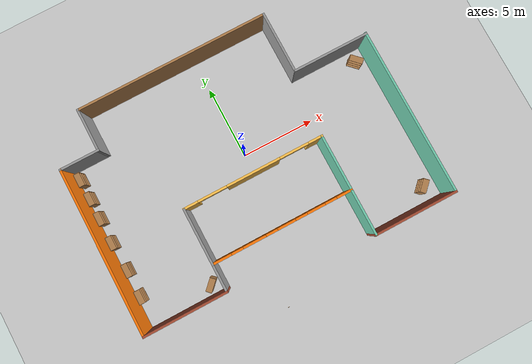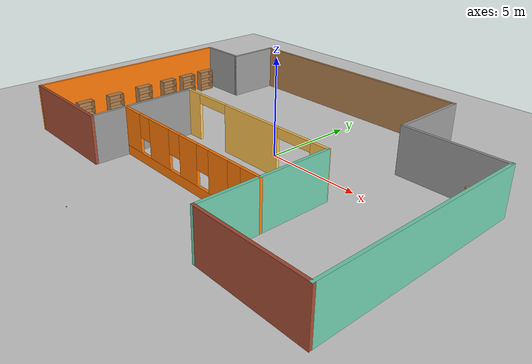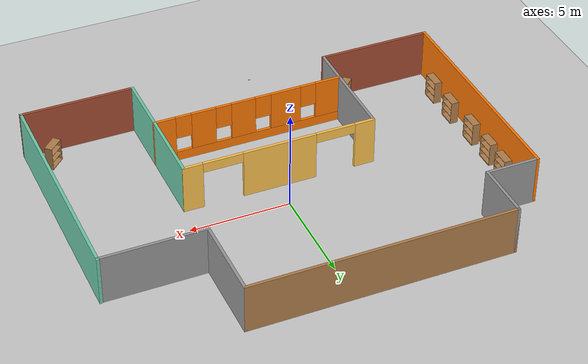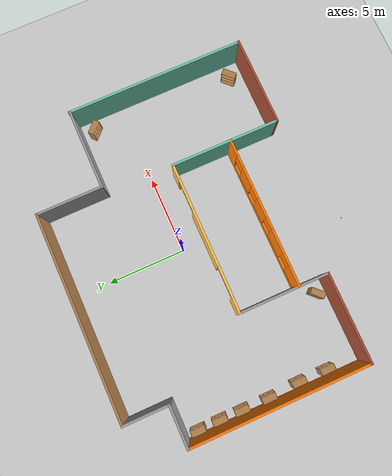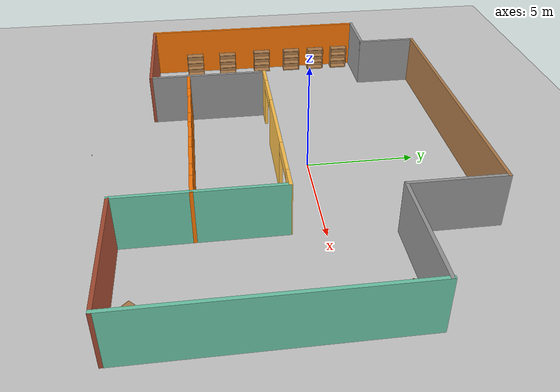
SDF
<sdf version="1.6">
 <world name="default">
  <light name="sun" type="directional">
   <pose>0 0 10 0 -0 0</pose>
   <diffuse>0.8 0.8 0.8 1</diffuse>
   <specular>0.2 0.2 0.2 1</specular>
   <attenuation>
    <range>1000</range>
    <constant>0.9</constant>
    <linear>0.01</linear>
    <quadratic>0.001</quadratic>
   </attenuation>
   <direction>-0.5 0.1 -0.9</direction>
  </light>
  <model name="ground_plane">
   <static>1</static>
   <link name="link">
    <collision name="collision">
     <geometry><plane><normal>0 0 1</normal><size>100 100</size></plane></geometry>
     <surface>
      <contact><collide_bitmask>65535</collide_bitmask></contact>
      <friction><ode><mu>100</mu><mu2>50</mu2></ode></friction>
     </surface>
    </collision>
    <visual name="visual">
     <cast_shadows>0</cast_shadows>
     <geometry><plane><normal>0 0 1</normal><size>100 100</size></plane></geometry>
     <material>
      <script><uri>file://media/materials/scripts/gazebo.material</uri><name>Gazebo/Grey</name></script>
     </material>
    </visual>
   </link>
  </model>
  <gravity>0 0 -9.8</gravity>
  <magnetic_field>6e-06 2.3e-05 -4.2e-05</magnetic_field>
  <atmosphere type="adiabatic"/>
  <physics name="default_physics" default="0" type="ode">
   <max_step_size>0.001</max_step_size>
   <real_time_factor>1</real_time_factor>
   <real_time_update_rate>1000</real_time_update_rate>
  </physics>
  <scene><ambient>0.4 0.4 0.4 1</ambient><background>0.7 0.7 0.7 1</background><shadows>1</shadows></scene>
  <audio><device>default</device></audio>
  <spherical_coordinates>
   <surface_model>EARTH_WGS84</surface_model>
   <latitude_deg>0</latitude_deg>
   <longitude_deg>0</longitude_deg>
   <elevation>0</elevation>
   <heading_deg>0</heading_deg>
  </spherical_coordinates>
  <model name="Building">
   <pose>-0.12037 -0.61393 0 0 -0 0</pose>
   <link name="Wall_0">
    <collision name="Wall_0_Collision">
     <geometry><box><size>13.25 0.15 2.5</size></box></geometry>
     <pose>0 0 1.25 0 -0 0</pose>
    </collision>
    <visual name="Wall_0_Visual">
     <pose>0 0 1.25 0 -0 0</pose>
     <geometry><box><size>13.25 0.15 2.5</size></box></geometry>
     <material>
      <script><uri>file://media/materials/scripts/gazebo.material</uri><name>Gazebo/Wood</name></script>
      <ambient>1 1 1 1</ambient>
     </material>
     <meta><layer>0</layer></meta>
    </visual>
    <pose>-1.25 7.725 0 0 -0 0</pose>
   </link>
   <link name="Wall_1">
    <collision name="Wall_1_Collision">
     <geometry><box><size>4.27249 0.15 2.5</size></box></geometry>
     <pose>0 0 1.25 0 -0 0</pose>
    </collision>
    <visual name="Wall_1_Visual">
     <pose>0 0 1.25 0 -0 0</pose>
     <geometry><box><size>4.27249 0.15 2.5</size></box></geometry>
     <material>
      <script><uri>file://media/materials/scripts/gazebo.material</uri><name>Gazebo/Grey</name></script>
      <ambient>1 1 1 1</ambient>
     </material>
     <meta><layer>0</layer></meta>
    </visual>
    <pose>5.3 5.66375 0 0 -0 -1.5708</pose>
   </link>
   <link name="Wall_10">
    <collision name="Wall_10_Collision">
     <geometry><box><size>2.75 0.15 2.5</size></box></geometry>
     <pose>0 0 1.25 0 -0 0</pose>
    </collision>
    <visual name="Wall_10_Visual">
     <pose>0 0 1.25 0 -0 0</pose>
     <geometry><box><size>2.75 0.15 2.5</size></box></geometry>
     <material>
      <script><uri>file://media/materials/scripts/gazebo.material</uri><name>Gazebo/Grey</name></script>
      <ambient>1 1 1 1</ambient>
     </material>
     <meta><layer>0</layer></meta>
    </visual>
    <pose>-9.1 4.875 0 0 -0 0</pose>
   </link>
   <link name="Wall_11">
    <collision name="Wall_11_Collision">
     <geometry><box><size>3 0.15 2.5</size></box></geometry>
     <pose>0 0 1.25 0 -0 0</pose>
    </collision>
    <visual name="Wall_11_Visual">
     <pose>0 0 1.25 0 -0 0</pose>
     <geometry><box><size>3 0.15 2.5</size></box></geometry>
     <material>
      <script><uri>file://media/materials/scripts/gazebo.material</uri><name>Gazebo/Grey</name></script>
      <ambient>1 1 1 1</ambient>
     </material>
     <meta><layer>0</layer></meta>
    </visual>
    <pose>-7.8 6.3 0 0 -0 1.5708</pose>
   </link>
   <link name="Wall_15">
    <collision name="Wall_15_Collision">
     <geometry><box><size>3.89729 0.15 2.5</size></box></geometry>
     <pose>0 0 1.25 0 -0 0</pose>
    </collision>
    <visual name="Wall_15_Visual">
     <pose>0 0 1.25 0 -0 0</pose>
     <geometry><box><size>3.89729 0.15 2.5</size></box></geometry>
     <material>
      <script><uri>file://media/materials/scripts/gazebo.material</uri><name>Gazebo/Grey</name></script>
      <ambient>1 1 1 1</ambient>
     </material>
     <meta><layer>0</layer></meta>
    </visual>
    <pose>-4.8 -2.75136 0 0 -0 1.5708</pose>
   </link>
   <link name="Wall_16">
    <pose>0 -0.837255 0 0 -0 0</pose>
    <visual name="Wall_16_Visual_0">
     <pose>-4.35572 0 1.25 0 -0 0</pose>
     <geometry><box><size>1.03855 0.15 2.5</size></box></geometry>
     <material>
      <script><uri>file://media/materials/scripts/gazebo.material</uri><name>Gazebo/Grey</name></script>
      <ambient>1 0.764706 0.305882 1</ambient>
     </material>
     <meta><layer>0</layer></meta>
    </visual>
    <collision name="Wall_16_Collision_0">
     <geometry><box><size>1.03855 0.15 2.5</size></box></geometry>
     <pose>-4.35572 0 1.25 0 -0 0</pose>
    </collision>
    <visual name="Wall_16_Visual_1">
     <pose>0.006927 0 1.25 0 -0 0</pose>
     <geometry><box><size>3.68675 0.15 2.5</size></box></geometry>
     <material>
      <script><uri>file://media/materials/scripts/gazebo.material</uri><name>Gazebo/Grey</name></script>
      <ambient>1 0.764706 0.305882 1</ambient>
     </material>
     <meta><layer>0</layer></meta>
    </visual>
    <collision name="Wall_16_Collision_1">
     <geometry><box><size>3.68675 0.15 2.5</size></box></geometry>
     <pose>0.006927 0 1.25 0 -0 0</pose>
    </collision>
    <visual name="Wall_16_Visual_2">
     <pose>4.36265 0 1.25 0 -0 0</pose>
     <geometry><box><size>1.0247 0.15 2.5</size></box></geometry>
     <material>
      <script><uri>file://media/materials/scripts/gazebo.material</uri><name>Gazebo/Grey</name></script>
      <ambient>1 0.764706 0.305882 1</ambient>
     </material>
     <meta><layer>0</layer></meta>
    </visual>
    <collision name="Wall_16_Collision_2">
     <geometry><box><size>1.0247 0.15 2.5</size></box></geometry>
     <pose>4.36265 0 1.25 0 -0 0</pose>
    </collision>
    <visual name="Wall_16_Visual_3">
     <pose>-2.83645 0 2.25 0 -0 0</pose>
     <geometry><box><size>2 0.15 0.5</size></box></geometry>
     <material>
      <script><uri>file://media/materials/scripts/gazebo.material</uri><name>Gazebo/Grey</name></script>
      <ambient>1 0.764706 0.305882 1</ambient>
     </material>
     <meta><layer>0</layer></meta>
    </visual>
    <collision name="Wall_16_Collision_3">
     <geometry><box><size>2 0.15 0.5</size></box></geometry>
     <pose>-2.83645 0 2.25 0 -0 0</pose>
    </collision>
    <visual name="Wall_16_Visual_4">
     <pose>2.8503 0 2.25 0 -0 0</pose>
     <geometry><box><size>2 0.15 0.5</size></box></geometry>
     <material>
      <script><uri>file://media/materials/scripts/gazebo.material</uri><name>Gazebo/Grey</name></script>
      <ambient>1 0.764706 0.305882 1</ambient>
     </material>
     <meta><layer>0</layer></meta>
    </visual>
    <collision name="Wall_16_Collision_4">
     <geometry><box><size>2 0.15 0.5</size></box></geometry>
     <pose>2.8503 0 2.25 0 -0 0</pose>
    </collision>
   </link>
   <link name="Wall_17">
    <collision name="Wall_17_Collision">
     <geometry><box><size>3.89729 0.15 2.5</size></box></geometry>
     <pose>0 0 1.25 0 -0 0</pose>
    </collision>
    <visual name="Wall_17_Visual">
     <pose>0 0 1.25 0 -0 0</pose>
     <geometry><box><size>3.89729 0.15 2.5</size></box></geometry>
     <material>
      <script><uri>file://media/materials/scripts/gazebo.material</uri><name>Gazebo/Grey</name></script>
      <ambient>0.435294 0.796078 0.67451 1</ambient>
     </material>
     <meta><layer>0</layer></meta>
    </visual>
    <pose>4.8 -2.75136 0 0 -0 -1.5708</pose>
   </link>
   <link name="Wall_2">
    <collision name="Wall_2_Collision">
     <geometry><box><size>5.25 0.15 2.5</size></box></geometry>
     <pose>0 0 1.25 0 -0 0</pose>
    </collision>
    <visual name="Wall_2_Visual">
     <pose>0 0 1.25 0 -0 0</pose>
     <geometry><box><size>5.25 0.15 2.5</size></box></geometry>
     <material>
      <script><uri>file://media/materials/scripts/gazebo.material</uri><name>Gazebo/Grey</name></script>
      <ambient>1 1 1 1</ambient>
     </material>
     <meta><layer>0</layer></meta>
    </visual>
    <pose>7.85 3.56733 0 0 -0 0</pose>
   </link>
   <link name="Wall_3">
    <collision name="Wall_3_Collision">
     <geometry><box><size>11.4775 0.15 2.5</size></box></geometry>
     <pose>0 0 1.25 0 -0 0</pose>
    </collision>
    <visual name="Wall_3_Visual">
     <pose>0 0 1.25 0 -0 0</pose>
     <geometry><box><size>11.4775 0.15 2.5</size></box></geometry>
     <material>
      <script><uri>file://media/materials/scripts/gazebo.material</uri><name>Gazebo/Grey</name></script>
      <ambient>0.435294 0.796078 0.67451 1</ambient>
     </material>
     <meta><layer>0</layer></meta>
    </visual>
    <pose>10.4 -2.06125 0 0 -0 -1.5708</pose>
   </link>
   <link name="Wall_4">
    <collision name="Wall_4_Collision">
     <geometry><box><size>5.75 0.15 2.5</size></box></geometry>
     <pose>0 0 1.25 0 -0 0</pose>
    </collision>
    <visual name="Wall_4_Visual">
     <pose>0 0 1.25 0 -0 0</pose>
     <geometry><box><size>5.75 0.15 2.5</size></box></geometry>
     <material>
      <script><uri>file://media/materials/scripts/gazebo.material</uri><name>Gazebo/Bricks</name></script>
      <ambient>1 1 1 1</ambient>
     </material>
     <meta><layer>0</layer></meta>
    </visual>
    <pose>7.6 -7.725 0 0 -0 3.14159</pose>
   </link>
   <link name="Wall_5">
    <collision name="Wall_5_Collision">
     <geometry><box><size>3.25 0.15 2.5</size></box></geometry>
     <pose>0 0 1.25 0 -0 0</pose>
    </collision>
    <visual name="Wall_5_Visual">
     <pose>0 0 1.25 0 -0 0</pose>
     <geometry><box><size>3.25 0.15 2.5</size></box></geometry>
     <material>
      <script><uri>file://media/materials/scripts/gazebo.material</uri><name>Gazebo/Grey</name></script>
      <ambient>0.435294 0.796078 0.67451 1</ambient>
     </material>
     <meta><layer>0</layer></meta>
    </visual>
    <pose>4.8 -6.175 0 0 -0 1.5708</pose>
   </link>
   <link name="Wall_6">
    <pose>0 -4.625 0 0 -0 3.14159</pose>
    <visual name="Wall_6_Visual_0">
     <pose>-4.31909 0 1.25 0 -0 0</pose>
     <geometry><box><size>1.11182 0.15 2.5</size></box></geometry>
     <material>
      <script><uri>file://media/materials/scripts/gazebo.material</uri><name>Gazebo/Grey</name></script>
      <ambient>0.996078 0.47451 0.0196078 1</ambient>
     </material>
     <meta><layer>0</layer></meta>
    </visual>
    <collision name="Wall_6_Collision_0">
     <geometry><box><size>1.11182 0.15 2.5</size></box></geometry>
     <pose>-4.31909 0 1.25 0 -0 0</pose>
    </collision>
    <visual name="Wall_6_Visual_1">
     <pose>0.555911 0 0.25 0 -0 0</pose>
     <geometry><box><size>8.63818 0.15 0.5</size></box></geometry>
     <material>
      <script><uri>file://media/materials/scripts/gazebo.material</uri><name>Gazebo/Grey</name></script>
      <ambient>0.996078 0.47451 0.0196078 1</ambient>
     </material>
     <meta><layer>0</layer></meta>
    </visual>
    <collision name="Wall_6_Collision_1">
     <geometry><box><size>8.63818 0.15 0.5</size></box></geometry>
     <pose>0.555911 0 0.25 0 -0 0</pose>
    </collision>
    <visual name="Wall_6_Visual_2">
     <pose>-2.33907 0 1.5 0 -0 0</pose>
     <geometry><box><size>1.24822 0.15 2</size></box></geometry>
     <material>
      <script><uri>file://media/materials/scripts/gazebo.material</uri><name>Gazebo/Grey</name></script>
      <ambient>0.996078 0.47451 0.0196078 1</ambient>
     </material>
     <meta><layer>0</layer></meta>
    </visual>
    <collision name="Wall_6_Collision_2">
     <geometry><box><size>1.24822 0.15 2</size></box></geometry>
     <pose>-2.33907 0 1.5 0 -0 0</pose>
    </collision>
    <visual name="Wall_6_Visual_3">
     <pose>-0.290856 0 1.5 0 -0 0</pose>
     <geometry><box><size>1.24822 0.15 2</size></box></geometry>
     <material>
      <script><uri>file://media/materials/scripts/gazebo.material</uri><name>Gazebo/Grey</name></script>
      <ambient>0.996078 0.47451 0.0196078 1</ambient>
     </material>
     <meta><layer>0</layer></meta>
    </visual>
    <collision name="Wall_6_Collision_3">
     <geometry><box><size>1.24822 0.15 2</size></box></geometry>
     <pose>-0.290856 0 1.5 0 -0 0</pose>
    </collision>
    <visual name="Wall_6_Visual_4">
     <pose>1.91696 0 1.5 0 -0 0</pose>
     <geometry><box><size>1.56742 0.15 2</size></box></geometry>
     <material>
      <script><uri>file://media/materials/scripts/gazebo.material</uri><name>Gazebo/Grey</name></script>
      <ambient>0.996078 0.47451 0.0196078 1</ambient>
     </material>
     <meta><layer>0</layer></meta>
    </visual>
    <collision name="Wall_6_Collision_4">
     <geometry><box><size>1.56742 0.15 2</size></box></geometry>
     <pose>1.91696 0 1.5 0 -0 0</pose>
    </collision>
    <visual name="Wall_6_Visual_5">
     <pose>4.18783 0 1.5 0 -0 0</pose>
     <geometry><box><size>1.37433 0.15 2</size></box></geometry>
     <material>
      <script><uri>file://media/materials/scripts/gazebo.material</uri><name>Gazebo/Grey</name></script>
      <ambient>0.996078 0.47451 0.0196078 1</ambient>
     </material>
     <meta><layer>0</layer></meta>
    </visual>
    <collision name="Wall_6_Collision_5">
     <geometry><box><size>1.37433 0.15 2</size></box></geometry>
     <pose>4.18783 0 1.5 0 -0 0</pose>
    </collision>
    <visual name="Wall_6_Visual_6">
     <pose>-3.36318 0 1.9 0 -0 0</pose>
     <geometry><box><size>0.8 0.15 1.2</size></box></geometry>
     <material>
      <script><uri>file://media/materials/scripts/gazebo.material</uri><name>Gazebo/Grey</name></script>
      <ambient>0.996078 0.47451 0.0196078 1</ambient>
     </material>
     <meta><layer>0</layer></meta>
    </visual>
    <collision name="Wall_6_Collision_6">
     <geometry><box><size>0.8 0.15 1.2</size></box></geometry>
     <pose>-3.36318 0 1.9 0 -0 0</pose>
    </collision>
    <visual name="Wall_6_Visual_7">
     <pose>-1.31496 0 1.9 0 -0 0</pose>
     <geometry><box><size>0.8 0.15 1.2</size></box></geometry>
     <material>
      <script><uri>file://media/materials/scripts/gazebo.material</uri><name>Gazebo/Grey</name></script>
      <ambient>0.996078 0.47451 0.0196078 1</ambient>
     </material>
     <meta><layer>0</layer></meta>
    </visual>
    <collision name="Wall_6_Collision_7">
     <geometry><box><size>0.8 0.15 1.2</size></box></geometry>
     <pose>-1.31496 0 1.9 0 -0 0</pose>
    </collision>
    <visual name="Wall_6_Visual_8">
     <pose>0.733252 0 1.9 0 -0 0</pose>
     <geometry><box><size>0.8 0.15 1.2</size></box></geometry>
     <material>
      <script><uri>file://media/materials/scripts/gazebo.material</uri><name>Gazebo/Grey</name></script>
      <ambient>0.996078 0.47451 0.0196078 1</ambient>
     </material>
     <meta><layer>0</layer></meta>
    </visual>
    <collision name="Wall_6_Collision_8">
     <geometry><box><size>0.8 0.15 1.2</size></box></geometry>
     <pose>0.733252 0 1.9 0 -0 0</pose>
    </collision>
    <visual name="Wall_6_Visual_9">
     <pose>3.10067 0 1.9 0 -0 0</pose>
     <geometry><box><size>0.8 0.15 1.2</size></box></geometry>
     <material>
      <script><uri>file://media/materials/scripts/gazebo.material</uri><name>Gazebo/Grey</name></script>
      <ambient>0.996078 0.47451 0.0196078 1</ambient>
     </material>
     <meta><layer>0</layer></meta>
    </visual>
    <collision name="Wall_6_Collision_9">
     <geometry><box><size>0.8 0.15 1.2</size></box></geometry>
     <pose>3.10067 0 1.9 0 -0 0</pose>
    </collision>
   </link>
   <link name="Wall_7">
    <collision name="Wall_7_Collision">
     <geometry><box><size>2 0.15 2.5</size></box></geometry>
     <pose>0 0 1.25 0 -0 0</pose>
    </collision>
    <visual name="Wall_7_Visual">
     <pose>0 0 1.25 0 -0 0</pose>
     <geometry><box><size>2 0.15 2.5</size></box></geometry>
     <material>
      <script><uri>file://media/materials/scripts/gazebo.material</uri><name>Gazebo/Grey</name></script>
      <ambient>1 1 1 1</ambient>
     </material>
     <meta><layer>0</layer></meta>
    </visual>
    <pose>-4.8 -5.55 0 0 -0 -1.5708</pose>
   </link>
   <link name="Wall_8">
    <collision name="Wall_8_Collision">
     <geometry><box><size>5.75 0.15 2.5</size></box></geometry>
     <pose>0 0 1.25 0 -0 0</pose>
    </collision>
    <visual name="Wall_8_Visual">
     <pose>0 0 1.25 0 -0 0</pose>
     <geometry><box><size>5.75 0.15 2.5</size></box></geometry>
     <material>
      <script><uri>file://media/materials/scripts/gazebo.material</uri><name>Gazebo/Bricks</name></script>
      <ambient>1 1 1 1</ambient>
     </material>
     <meta><layer>0</layer></meta>
    </visual>
    <pose>-7.6 -6.475 0 0 -0 3.14159</pose>
   </link>
   <link name="Wall_9">
    <collision name="Wall_9_Collision">
     <geometry><box><size>11.5 0.15 2.5</size></box></geometry>
     <pose>0 0 1.25 0 -0 0</pose>
    </collision>
    <visual name="Wall_9_Visual">
     <pose>0 0 1.25 0 -0 0</pose>
     <geometry><box><size>11.5 0.15 2.5</size></box></geometry>
     <material>
      <script><uri>file://media/materials/scripts/gazebo.material</uri><name>Gazebo/Grey</name></script>
      <ambient>0.996078 0.47451 0.0196078 1</ambient>
     </material>
     <meta><layer>0</layer></meta>
    </visual>
    <pose>-10.4 -0.8 0 0 -0 1.5708</pose>
   </link>
   <static>1</static>
  </model>
  <model name="bookshelf">
   <static>1</static>
   <link name="link">
    <inertial><mass>1</mass></inertial>
    <collision name="back">
     <pose>0 0.005 0.6 0 -0 0</pose>
     <geometry><box><size>0.9 0.01 1.2</size></box></geometry>
    </collision>
    <visual name="visual1">
     <pose>0 0.005 0.6 0 -0 0</pose>
     <geometry><box><size>0.9 0.01 1.2</size></box></geometry>
     <material>
      <script><uri>file://media/materials/scripts/gazebo.material</uri><name>Gazebo/Wood</name></script>
     </material>
    </visual>
    <collision name="left_side">
     <pose>0.45 -0.195 0.6 0 -0 0</pose>
     <geometry><box><size>0.02 0.4 1.2</size></box></geometry>
    </collision>
    <visual name="visual2">
     <pose>0.45 -0.195 0.6 0 -0 0</pose>
     <geometry><box><size>0.02 0.4 1.2</size></box></geometry>
     <material>
      <script><uri>file://media/materials/scripts/gazebo.material</uri><name>Gazebo/Wood</name></script>
     </material>
    </visual>
    <collision name="right_side">
     <pose>-0.45 -0.195 0.6 0 -0 0</pose>
     <geometry><box><size>0.02 0.4 1.2</size></box></geometry>
    </collision>
    <visual name="visual3">
     <pose>-0.45 -0.195 0.6 0 -0 0</pose>
     <geometry><box><size>0.02 0.4 1.2</size></box></geometry>
     <material>
      <script><uri>file://media/materials/scripts/gazebo.material</uri><name>Gazebo/Wood</name></script>
     </material>
    </visual>
    <collision name="bottom">
     <pose>0 -0.195 0.03 0 -0 0</pose>
     <geometry><box><size>0.88 0.4 0.06</size></box></geometry>
    </collision>
    <visual name="visual4">
     <pose>0 -0.195 0.03 0 -0 0</pose>
     <geometry><box><size>0.88 0.4 0.06</size></box></geometry>
     <material>
      <script><uri>file://media/materials/scripts/gazebo.material</uri><name>Gazebo/Wood</name></script>
     </material>
    </visual>
    <collision name="top">
     <pose>0 -0.195 1.19 0 -0 0</pose>
     <geometry><box><size>0.88 0.4 0.02</size></box></geometry>
    </collision>
    <visual name="visual5">
     <pose>0 -0.195 1.19 0 -0 0</pose>
     <geometry><box><size>0.88 0.4 0.02</size></box></geometry>
     <material>
      <script><uri>file://media/materials/scripts/gazebo.material</uri><name>Gazebo/Wood</name></script>
     </material>
    </visual>
    <collision name="low_shelf">
     <pose>0 -0.195 0.43 0 -0 0</pose>
     <geometry><box><size>0.88 0.4 0.02</size></box></geometry>
    </collision>
    <visual name="visual6">
     <pose>0 -0.195 0.43 0 -0 0</pose>
     <geometry><box><size>0.88 0.4 0.02</size></box></geometry>
     <material>
      <script><uri>file://media/materials/scripts/gazebo.material</uri><name>Gazebo/Wood</name></script>
     </material>
    </visual>
    <collision name="high_shelf">
     <pose>0 -0.195 0.8 0 -0 0</pose>
     <geometry><box><size>0.88 0.4 0.02</size></box></geometry>
    </collision>
    <visual name="visual7">
     <pose>0 -0.195 0.8 0 -0 0</pose>
     <geometry><box><size>0.88 0.4 0.02</size></box></geometry>
     <material>
      <script><uri>file://media/materials/scripts/gazebo.material</uri><name>Gazebo/Wood</name></script>
     </material>
    </visual>
   </link>
   <pose>-10.3049 3.46726 0 0 -0 1.5708</pose>
  </model>
  <model name="wood_block_10_2_1cm">
   <link name="link">
    <pose>0 0 0.005 0 -0 0</pose>
    <inertial>
     <mass>0.0125</mass>
     <inertia>
      <ixx>7.55208e-07</ixx>
      <ixy>0</ixy>
      <ixz>0</ixz>
      <iyy>1.05208e-05</iyy>
      <iyz>0</iyz>
      <izz>1.10677e-05</izz>
     </inertia>
    </inertial>
    <collision name="collision">
     <geometry><box><size>0.1 0.025 0.01</size></box></geometry>
     <surface>
      <contact>
       <poissons_ratio>0.347</poissons_ratio>
       <elastic_modulus>8.8e+09</elastic_modulus>
       <ode><kp>100000</kp><kd>1</kd><max_vel>1</max_vel><min_depth>0.001</min_depth></ode>
      </contact>
      <friction>
       <torsional>
        <coefficient>1</coefficient>
        <use_patch_radius>0</use_patch_radius>
        <surface_radius>0.05</surface_radius>
       </torsional>
      </friction>
     </surface>
    </collision>
    <visual name="visual">
     <geometry><box><size>0.1 0.025 0.01</size></box></geometry>
     <material>
      <script><uri>file://media/materials/scripts/gazebo.material</uri><name>Gazebo/Wood</name></script>
     </material>
    </visual>
   </link>
   <pose>-2.12101 -10.0279 -0.001 0 -0 0</pose>
  </model>
  <model name="bookshelf_clone">
   <static>1</static>
   <link name="link">
    <inertial><mass>1</mass></inertial>
    <collision name="back">
     <pose>0 0.005 0.6 0 -0 0</pose>
     <geometry><box><size>0.9 0.01 1.2</size></box></geometry>
    </collision>
    <visual name="visual1">
     <pose>0 0.005 0.6 0 -0 0</pose>
     <geometry><box><size>0.9 0.01 1.2</size></box></geometry>
     <material>
      <script><uri>file://media/materials/scripts/gazebo.material</uri><name>Gazebo/Wood</name></script>
     </material>
    </visual>
    <collision name="left_side">
     <pose>0.45 -0.195 0.6 0 -0 0</pose>
     <geometry><box><size>0.02 0.4 1.2</size></box></geometry>
    </collision>
    <visual name="visual2">
     <pose>0.45 -0.195 0.6 0 -0 0</pose>
     <geometry><box><size>0.02 0.4 1.2</size></box></geometry>
     <material>
      <script><uri>file://media/materials/scripts/gazebo.material</uri><name>Gazebo/Wood</name></script>
     </material>
    </visual>
    <collision name="right_side">
     <pose>-0.45 -0.195 0.6 0 -0 0</pose>
     <geometry><box><size>0.02 0.4 1.2</size></box></geometry>
    </collision>
    <visual name="visual3">
     <pose>-0.45 -0.195 0.6 0 -0 0</pose>
     <geometry><box><size>0.02 0.4 1.2</size></box></geometry>
     <material>
      <script><uri>file://media/materials/scripts/gazebo.material</uri><name>Gazebo/Wood</name></script>
     </material>
    </visual>
    <collision name="bottom">
     <pose>0 -0.195 0.03 0 -0 0</pose>
     <geometry><box><size>0.88 0.4 0.06</size></box></geometry>
    </collision>
    <visual name="visual4">
     <pose>0 -0.195 0.03 0 -0 0</pose>
     <geometry><box><size>0.88 0.4 0.06</size></box></geometry>
     <material>
      <script><uri>file://media/materials/scripts/gazebo.material</uri><name>Gazebo/Wood</name></script>
     </material>
    </visual>
    <collision name="top">
     <pose>0 -0.195 1.19 0 -0 0</pose>
     <geometry><box><size>0.88 0.4 0.02</size></box></geometry>
    </collision>
    <visual name="visual5">
     <pose>0 -0.195 1.19 0 -0 0</pose>
     <geometry><box><size>0.88 0.4 0.02</size></box></geometry>
     <material>
      <script><uri>file://media/materials/scripts/gazebo.material</uri><name>Gazebo/Wood</name></script>
     </material>
    </visual>
    <collision name="low_shelf">
     <pose>0 -0.195 0.43 0 -0 0</pose>
     <geometry><box><size>0.88 0.4 0.02</size></box></geometry>
    </collision>
    <visual name="visual6">
     <pose>0 -0.195 0.43 0 -0 0</pose>
     <geometry><box><size>0.88 0.4 0.02</size></box></geometry>
     <material>
      <script><uri>file://media/materials/scripts/gazebo.material</uri><name>Gazebo/Wood</name></script>
     </material>
    </visual>
    <collision name="high_shelf">
     <pose>0 -0.195 0.8 0 -0 0</pose>
     <geometry><box><size>0.88 0.4 0.02</size></box></geometry>
    </collision>
    <visual name="visual7">
     <pose>0 -0.195 0.8 0 -0 0</pose>
     <geometry><box><size>0.88 0.4 0.02</size></box></geometry>
     <material>
      <script><uri>file://media/materials/scripts/gazebo.material</uri><name>Gazebo/Wood</name></script>
     </material>
    </visual>
   </link>
   <pose>-10.2826 2.07607 0 0 -0 1.5708</pose>
  </model>
  <model name="bookshelf_clone_0">
   <static>1</static>
   <link name="link">
    <inertial><mass>1</mass></inertial>
    <collision name="back">
     <pose>0 0.005 0.6 0 -0 0</pose>
     <geometry><box><size>0.9 0.01 1.2</size></box></geometry>
    </collision>
    <visual name="visual1">
     <pose>0 0.005 0.6 0 -0 0</pose>
     <geometry><box><size>0.9 0.01 1.2</size></box></geometry>
     <material>
      <script><uri>file://media/materials/scripts/gazebo.material</uri><name>Gazebo/Wood</name></script>
     </material>
    </visual>
    <collision name="left_side">
     <pose>0.45 -0.195 0.6 0 -0 0</pose>
     <geometry><box><size>0.02 0.4 1.2</size></box></geometry>
    </collision>
    <visual name="visual2">
     <pose>0.45 -0.195 0.6 0 -0 0</pose>
     <geometry><box><size>0.02 0.4 1.2</size></box></geometry>
     <material>
      <script><uri>file://media/materials/scripts/gazebo.material</uri><name>Gazebo/Wood</name></script>
     </material>
    </visual>
    <collision name="right_side">
     <pose>-0.45 -0.195 0.6 0 -0 0</pose>
     <geometry><box><size>0.02 0.4 1.2</size></box></geometry>
    </collision>
    <visual name="visual3">
     <pose>-0.45 -0.195 0.6 0 -0 0</pose>
     <geometry><box><size>0.02 0.4 1.2</size></box></geometry>
     <material>
      <script><uri>file://media/materials/scripts/gazebo.material</uri><name>Gazebo/Wood</name></script>
     </material>
    </visual>
    <collision name="bottom">
     <pose>0 -0.195 0.03 0 -0 0</pose>
     <geometry><box><size>0.88 0.4 0.06</size></box></geometry>
    </collision>
    <visual name="visual4">
     <pose>0 -0.195 0.03 0 -0 0</pose>
     <geometry><box><size>0.88 0.4 0.06</size></box></geometry>
     <material>
      <script><uri>file://media/materials/scripts/gazebo.material</uri><name>Gazebo/Wood</name></script>
     </material>
    </visual>
    <collision name="top">
     <pose>0 -0.195 1.19 0 -0 0</pose>
     <geometry><box><size>0.88 0.4 0.02</size></box></geometry>
    </collision>
    <visual name="visual5">
     <pose>0 -0.195 1.19 0 -0 0</pose>
     <geometry><box><size>0.88 0.4 0.02</size></box></geometry>
     <material>
      <script><uri>file://media/materials/scripts/gazebo.material</uri><name>Gazebo/Wood</name></script>
     </material>
    </visual>
    <collision name="low_shelf">
     <pose>0 -0.195 0.43 0 -0 0</pose>
     <geometry><box><size>0.88 0.4 0.02</size></box></geometry>
    </collision>
    <visual name="visual6">
     <pose>0 -0.195 0.43 0 -0 0</pose>
     <geometry><box><size>0.88 0.4 0.02</size></box></geometry>
     <material>
      <script><uri>file://media/materials/scripts/gazebo.material</uri><name>Gazebo/Wood</name></script>
     </material>
    </visual>
    <collision name="high_shelf">
     <pose>0 -0.195 0.8 0 -0 0</pose>
     <geometry><box><size>0.88 0.4 0.02</size></box></geometry>
    </collision>
    <visual name="visual7">
     <pose>0 -0.195 0.8 0 -0 0</pose>
     <geometry><box><size>0.88 0.4 0.02</size></box></geometry>
     <material>
      <script><uri>file://media/materials/scripts/gazebo.material</uri><name>Gazebo/Wood</name></script>
     </material>
    </visual>
   </link>
   <pose>-10.2947 0.66231 0 0 -0 1.5708</pose>
  </model>
  <model name="bookshelf_clone_1">
   <static>1</static>
   <link name="link">
    <inertial><mass>1</mass></inertial>
    <collision name="back">
     <pose>0 0.005 0.6 0 -0 0</pose>
     <geometry><box><size>0.9 0.01 1.2</size></box></geometry>
    </collision>
    <visual name="visual1">
     <pose>0 0.005 0.6 0 -0 0</pose>
     <geometry><box><size>0.9 0.01 1.2</size></box></geometry>
     <material>
      <script><uri>file://media/materials/scripts/gazebo.material</uri><name>Gazebo/Wood</name></script>
     </material>
    </visual>
    <collision name="left_side">
     <pose>0.45 -0.195 0.6 0 -0 0</pose>
     <geometry><box><size>0.02 0.4 1.2</size></box></geometry>
    </collision>
    <visual name="visual2">
     <pose>0.45 -0.195 0.6 0 -0 0</pose>
     <geometry><box><size>0.02 0.4 1.2</size></box></geometry>
     <material>
      <script><uri>file://media/materials/scripts/gazebo.material</uri><name>Gazebo/Wood</name></script>
     </material>
    </visual>
    <collision name="right_side">
     <pose>-0.45 -0.195 0.6 0 -0 0</pose>
     <geometry><box><size>0.02 0.4 1.2</size></box></geometry>
    </collision>
    <visual name="visual3">
     <pose>-0.45 -0.195 0.6 0 -0 0</pose>
     <geometry><box><size>0.02 0.4 1.2</size></box></geometry>
     <material>
      <script><uri>file://media/materials/scripts/gazebo.material</uri><name>Gazebo/Wood</name></script>
     </material>
    </visual>
    <collision name="bottom">
     <pose>0 -0.195 0.03 0 -0 0</pose>
     <geometry><box><size>0.88 0.4 0.06</size></box></geometry>
    </collision>
    <visual name="visual4">
     <pose>0 -0.195 0.03 0 -0 0</pose>
     <geometry><box><size>0.88 0.4 0.06</size></box></geometry>
     <material>
      <script><uri>file://media/materials/scripts/gazebo.material</uri><name>Gazebo/Wood</name></script>
     </material>
    </visual>
    <collision name="top">
     <pose>0 -0.195 1.19 0 -0 0</pose>
     <geometry><box><size>0.88 0.4 0.02</size></box></geometry>
    </collision>
    <visual name="visual5">
     <pose>0 -0.195 1.19 0 -0 0</pose>
     <geometry><box><size>0.88 0.4 0.02</size></box></geometry>
     <material>
      <script><uri>file://media/materials/scripts/gazebo.material</uri><name>Gazebo/Wood</name></script>
     </material>
    </visual>
    <collision name="low_shelf">
     <pose>0 -0.195 0.43 0 -0 0</pose>
     <geometry><box><size>0.88 0.4 0.02</size></box></geometry>
    </collision>
    <visual name="visual6">
     <pose>0 -0.195 0.43 0 -0 0</pose>
     <geometry><box><size>0.88 0.4 0.02</size></box></geometry>
     <material>
      <script><uri>file://media/materials/scripts/gazebo.material</uri><name>Gazebo/Wood</name></script>
     </material>
    </visual>
    <collision name="high_shelf">
     <pose>0 -0.195 0.8 0 -0 0</pose>
     <geometry><box><size>0.88 0.4 0.02</size></box></geometry>
    </collision>
    <visual name="visual7">
     <pose>0 -0.195 0.8 0 -0 0</pose>
     <geometry><box><size>0.88 0.4 0.02</size></box></geometry>
     <material>
      <script><uri>file://media/materials/scripts/gazebo.material</uri><name>Gazebo/Wood</name></script>
     </material>
    </visual>
   </link>
   <pose>-10.3115 -1.06915 0 0 -0 1.5708</pose>
  </model>
  <model name="bookshelf_clone_2">
   <static>1</static>
   <link name="link">
    <inertial><mass>1</mass></inertial>
    <collision name="back">
     <pose>0 0.005 0.6 0 -0 0</pose>
     <geometry><box><size>0.9 0.01 1.2</size></box></geometry>
    </collision>
    <visual name="visual1">
     <pose>0 0.005 0.6 0 -0 0</pose>
     <geometry><box><size>0.9 0.01 1.2</size></box></geometry>
     <material>
      <script><uri>file://media/materials/scripts/gazebo.material</uri><name>Gazebo/Wood</name></script>
     </material>
    </visual>
    <collision name="left_side">
     <pose>0.45 -0.195 0.6 0 -0 0</pose>
     <geometry><box><size>0.02 0.4 1.2</size></box></geometry>
    </collision>
    <visual name="visual2">
     <pose>0.45 -0.195 0.6 0 -0 0</pose>
     <geometry><box><size>0.02 0.4 1.2</size></box></geometry>
     <material>
      <script><uri>file://media/materials/scripts/gazebo.material</uri><name>Gazebo/Wood</name></script>
     </material>
    </visual>
    <collision name="right_side">
     <pose>-0.45 -0.195 0.6 0 -0 0</pose>
     <geometry><box><size>0.02 0.4 1.2</size></box></geometry>
    </collision>
    <visual name="visual3">
     <pose>-0.45 -0.195 0.6 0 -0 0</pose>
     <geometry><box><size>0.02 0.4 1.2</size></box></geometry>
     <material>
      <script><uri>file://media/materials/scripts/gazebo.material</uri><name>Gazebo/Wood</name></script>
     </material>
    </visual>
    <collision name="bottom">
     <pose>0 -0.195 0.03 0 -0 0</pose>
     <geometry><box><size>0.88 0.4 0.06</size></box></geometry>
    </collision>
    <visual name="visual4">
     <pose>0 -0.195 0.03 0 -0 0</pose>
     <geometry><box><size>0.88 0.4 0.06</size></box></geometry>
     <material>
      <script><uri>file://media/materials/scripts/gazebo.material</uri><name>Gazebo/Wood</name></script>
     </material>
    </visual>
    <collision name="top">
     <pose>0 -0.195 1.19 0 -0 0</pose>
     <geometry><box><size>0.88 0.4 0.02</size></box></geometry>
    </collision>
    <visual name="visual5">
     <pose>0 -0.195 1.19 0 -0 0</pose>
     <geometry><box><size>0.88 0.4 0.02</size></box></geometry>
     <material>
      <script><uri>file://media/materials/scripts/gazebo.material</uri><name>Gazebo/Wood</name></script>
     </material>
    </visual>
    <collision name="low_shelf">
     <pose>0 -0.195 0.43 0 -0 0</pose>
     <geometry><box><size>0.88 0.4 0.02</size></box></geometry>
    </collision>
    <visual name="visual6">
     <pose>0 -0.195 0.43 0 -0 0</pose>
     <geometry><box><size>0.88 0.4 0.02</size></box></geometry>
     <material>
      <script><uri>file://media/materials/scripts/gazebo.material</uri><name>Gazebo/Wood</name></script>
     </material>
    </visual>
    <collision name="high_shelf">
     <pose>0 -0.195 0.8 0 -0 0</pose>
     <geometry><box><size>0.88 0.4 0.02</size></box></geometry>
    </collision>
    <visual name="visual7">
     <pose>0 -0.195 0.8 0 -0 0</pose>
     <geometry><box><size>0.88 0.4 0.02</size></box></geometry>
     <material>
      <script><uri>file://media/materials/scripts/gazebo.material</uri><name>Gazebo/Wood</name></script>
     </material>
    </visual>
   </link>
   <pose>-10.1969 -3.06233 0 0 -0 1.5708</pose>
  </model>
  <model name="bookshelf_clone_3">
   <static>1</static>
   <link name="link">
    <inertial><mass>1</mass></inertial>
    <collision name="back">
     <pose>0 0.005 0.6 0 -0 0</pose>
     <geometry><box><size>0.9 0.01 1.2</size></box></geometry>
    </collision>
    <visual name="visual1">
     <pose>0 0.005 0.6 0 -0 0</pose>
     <geometry><box><size>0.9 0.01 1.2</size></box></geometry>
     <material>
      <script><uri>file://media/materials/scripts/gazebo.material</uri><name>Gazebo/Wood</name></script>
     </material>
    </visual>
    <collision name="left_side">
     <pose>0.45 -0.195 0.6 0 -0 0</pose>
     <geometry><box><size>0.02 0.4 1.2</size></box></geometry>
    </collision>
    <visual name="visual2">
     <pose>0.45 -0.195 0.6 0 -0 0</pose>
     <geometry><box><size>0.02 0.4 1.2</size></box></geometry>
     <material>
      <script><uri>file://media/materials/scripts/gazebo.material</uri><name>Gazebo/Wood</name></script>
     </material>
    </visual>
    <collision name="right_side">
     <pose>-0.45 -0.195 0.6 0 -0 0</pose>
     <geometry><box><size>0.02 0.4 1.2</size></box></geometry>
    </collision>
    <visual name="visual3">
     <pose>-0.45 -0.195 0.6 0 -0 0</pose>
     <geometry><box><size>0.02 0.4 1.2</size></box></geometry>
     <material>
      <script><uri>file://media/materials/scripts/gazebo.material</uri><name>Gazebo/Wood</name></script>
     </material>
    </visual>
    <collision name="bottom">
     <pose>0 -0.195 0.03 0 -0 0</pose>
     <geometry><box><size>0.88 0.4 0.06</size></box></geometry>
    </collision>
    <visual name="visual4">
     <pose>0 -0.195 0.03 0 -0 0</pose>
     <geometry><box><size>0.88 0.4 0.06</size></box></geometry>
     <material>
      <script><uri>file://media/materials/scripts/gazebo.material</uri><name>Gazebo/Wood</name></script>
     </material>
    </visual>
    <collision name="top">
     <pose>0 -0.195 1.19 0 -0 0</pose>
     <geometry><box><size>0.88 0.4 0.02</size></box></geometry>
    </collision>
    <visual name="visual5">
     <pose>0 -0.195 1.19 0 -0 0</pose>
     <geometry><box><size>0.88 0.4 0.02</size></box></geometry>
     <material>
      <script><uri>file://media/materials/scripts/gazebo.material</uri><name>Gazebo/Wood</name></script>
     </material>
    </visual>
    <collision name="low_shelf">
     <pose>0 -0.195 0.43 0 -0 0</pose>
     <geometry><box><size>0.88 0.4 0.02</size></box></geometry>
    </collision>
    <visual name="visual6">
     <pose>0 -0.195 0.43 0 -0 0</pose>
     <geometry><box><size>0.88 0.4 0.02</size></box></geometry>
     <material>
      <script><uri>file://media/materials/scripts/gazebo.material</uri><name>Gazebo/Wood</name></script>
     </material>
    </visual>
    <collision name="high_shelf">
     <pose>0 -0.195 0.8 0 -0 0</pose>
     <geometry><box><size>0.88 0.4 0.02</size></box></geometry>
    </collision>
    <visual name="visual7">
     <pose>0 -0.195 0.8 0 -0 0</pose>
     <geometry><box><size>0.88 0.4 0.02</size></box></geometry>
     <material>
      <script><uri>file://media/materials/scripts/gazebo.material</uri><name>Gazebo/Wood</name></script>
     </material>
    </visual>
   </link>
   <pose>-10.2254 -4.90864 0 0 -0 1.5708</pose>
  </model>
  <model name="bookshelf_clone_0_clone">
   <static>1</static>
   <link name="link">
    <inertial><mass>1</mass></inertial>
    <collision name="back">
     <pose>0 0.005 0.6 0 -0 0</pose>
     <geometry><box><size>0.9 0.01 1.2</size></box></geometry>
    </collision>
    <visual name="visual1">
     <pose>0 0.005 0.6 0 -0 0</pose>
     <geometry><box><size>0.9 0.01 1.2</size></box></geometry>
     <material>
      <script><uri>file://media/materials/scripts/gazebo.material</uri><name>Gazebo/Wood</name></script>
     </material>
    </visual>
    <collision name="left_side">
     <pose>0.45 -0.195 0.6 0 -0 0</pose>
     <geometry><box><size>0.02 0.4 1.2</size></box></geometry>
    </collision>
    <visual name="visual2">
     <pose>0.45 -0.195 0.6 0 -0 0</pose>
     <geometry><box><size>0.02 0.4 1.2</size></box></geometry>
     <material>
      <script><uri>file://media/materials/scripts/gazebo.material</uri><name>Gazebo/Wood</name></script>
     </material>
    </visual>
    <collision name="right_side">
     <pose>-0.45 -0.195 0.6 0 -0 0</pose>
     <geometry><box><size>0.02 0.4 1.2</size></box></geometry>
    </collision>
    <visual name="visual3">
     <pose>-0.45 -0.195 0.6 0 -0 0</pose>
     <geometry><box><size>0.02 0.4 1.2</size></box></geometry>
     <material>
      <script><uri>file://media/materials/scripts/gazebo.material</uri><name>Gazebo/Wood</name></script>
     </material>
    </visual>
    <collision name="bottom">
     <pose>0 -0.195 0.03 0 -0 0</pose>
     <geometry><box><size>0.88 0.4 0.06</size></box></geometry>
    </collision>
    <visual name="visual4">
     <pose>0 -0.195 0.03 0 -0 0</pose>
     <geometry><box><size>0.88 0.4 0.06</size></box></geometry>
     <material>
      <script><uri>file://media/materials/scripts/gazebo.material</uri><name>Gazebo/Wood</name></script>
     </material>
    </visual>
    <collision name="top">
     <pose>0 -0.195 1.19 0 -0 0</pose>
     <geometry><box><size>0.88 0.4 0.02</size></box></geometry>
    </collision>
    <visual name="visual5">
     <pose>0 -0.195 1.19 0 -0 0</pose>
     <geometry><box><size>0.88 0.4 0.02</size></box></geometry>
     <material>
      <script><uri>file://media/materials/scripts/gazebo.material</uri><name>Gazebo/Wood</name></script>
     </material>
    </visual>
    <collision name="low_shelf">
     <pose>0 -0.195 0.43 0 -0 0</pose>
     <geometry><box><size>0.88 0.4 0.02</size></box></geometry>
    </collision>
    <visual name="visual6">
     <pose>0 -0.195 0.43 0 -0 0</pose>
     <geometry><box><size>0.88 0.4 0.02</size></box></geometry>
     <material>
      <script><uri>file://media/materials/scripts/gazebo.material</uri><name>Gazebo/Wood</name></script>
     </material>
    </visual>
    <collision name="high_shelf">
     <pose>0 -0.195 0.8 0 -0 0</pose>
     <geometry><box><size>0.88 0.4 0.02</size></box></geometry>
    </collision>
    <visual name="visual7">
     <pose>0 -0.195 0.8 0 -0 0</pose>
     <geometry><box><size>0.88 0.4 0.02</size></box></geometry>
     <material>
      <script><uri>file://media/materials/scripts/gazebo.material</uri><name>Gazebo/Wood</name></script>
     </material>
    </visual>
   </link>
   <pose>9.5006 2.17661 0 0 0 -0.785394</pose>
  </model>
  <model name="bookshelf_clone_0_clone_clone">
   <static>1</static>
   <link name="link">
    <inertial><mass>1</mass></inertial>
    <collision name="back">
     <pose>0 0.005 0.6 0 -0 0</pose>
     <geometry><box><size>0.9 0.01 1.2</size></box></geometry>
    </collision>
    <visual name="visual1">
     <pose>0 0.005 0.6 0 -0 0</pose>
     <geometry><box><size>0.9 0.01 1.2</size></box></geometry>
     <material>
      <script><uri>file://media/materials/scripts/gazebo.material</uri><name>Gazebo/Wood</name></script>
     </material>
    </visual>
    <collision name="left_side">
     <pose>0.45 -0.195 0.6 0 -0 0</pose>
     <geometry><box><size>0.02 0.4 1.2</size></box></geometry>
    </collision>
    <visual name="visual2">
     <pose>0.45 -0.195 0.6 0 -0 0</pose>
     <geometry><box><size>0.02 0.4 1.2</size></box></geometry>
     <material>
      <script><uri>file://media/materials/scripts/gazebo.material</uri><name>Gazebo/Wood</name></script>
     </material>
    </visual>
    <collision name="right_side">
     <pose>-0.45 -0.195 0.6 0 -0 0</pose>
     <geometry><box><size>0.02 0.4 1.2</size></box></geometry>
    </collision>
    <visual name="visual3">
     <pose>-0.45 -0.195 0.6 0 -0 0</pose>
     <geometry><box><size>0.02 0.4 1.2</size></box></geometry>
     <material>
      <script><uri>file://media/materials/scripts/gazebo.material</uri><name>Gazebo/Wood</name></script>
     </material>
    </visual>
    <collision name="bottom">
     <pose>0 -0.195 0.03 0 -0 0</pose>
     <geometry><box><size>0.88 0.4 0.06</size></box></geometry>
    </collision>
    <visual name="visual4">
     <pose>0 -0.195 0.03 0 -0 0</pose>
     <geometry><box><size>0.88 0.4 0.06</size></box></geometry>
     <material>
      <script><uri>file://media/materials/scripts/gazebo.material</uri><name>Gazebo/Wood</name></script>
     </material>
    </visual>
    <collision name="top">
     <pose>0 -0.195 1.19 0 -0 0</pose>
     <geometry><box><size>0.88 0.4 0.02</size></box></geometry>
    </collision>
    <visual name="visual5">
     <pose>0 -0.195 1.19 0 -0 0</pose>
     <geometry><box><size>0.88 0.4 0.02</size></box></geometry>
     <material>
      <script><uri>file://media/materials/scripts/gazebo.material</uri><name>Gazebo/Wood</name></script>
     </material>
    </visual>
    <collision name="low_shelf">
     <pose>0 -0.195 0.43 0 -0 0</pose>
     <geometry><box><size>0.88 0.4 0.02</size></box></geometry>
    </collision>
    <visual name="visual6">
     <pose>0 -0.195 0.43 0 -0 0</pose>
     <geometry><box><size>0.88 0.4 0.02</size></box></geometry>
     <material>
      <script><uri>file://media/materials/scripts/gazebo.material</uri><name>Gazebo/Wood</name></script>
     </material>
    </visual>
    <collision name="high_shelf">
     <pose>0 -0.195 0.8 0 -0 0</pose>
     <geometry><box><size>0.88 0.4 0.02</size></box></geometry>
    </collision>
    <visual name="visual7">
     <pose>0 -0.195 0.8 0 -0 0</pose>
     <geometry><box><size>0.88 0.4 0.02</size></box></geometry>
     <material>
      <script><uri>file://media/materials/scripts/gazebo.material</uri><name>Gazebo/Wood</name></script>
     </material>
    </visual>
   </link>
   <pose>9.30219 -7.38936 0 0 0 -2.35619</pose>
  </model>
  <model name="bookshelf_clone_0_clone_clone_clone">
   <static>1</static>
   <link name="link">
    <inertial><mass>1</mass></inertial>
    <collision name="back">
     <pose>0 0.005 0.6 0 -0 0</pose>
     <geometry><box><size>0.9 0.01 1.2</size></box></geometry>
    </collision>
    <visual name="visual1">
     <pose>0 0.005 0.6 0 -0 0</pose>
     <geometry><box><size>0.9 0.01 1.2</size></box></geometry>
     <material>
      <script><uri>file://media/materials/scripts/gazebo.material</uri><name>Gazebo/Wood</name></script>
     </material>
    </visual>
    <collision name="left_side">
     <pose>0.45 -0.195 0.6 0 -0 0</pose>
     <geometry><box><size>0.02 0.4 1.2</size></box></geometry>
    </collision>
    <visual name="visual2">
     <pose>0.45 -0.195 0.6 0 -0 0</pose>
     <geometry><box><size>0.02 0.4 1.2</size></box></geometry>
     <material>
      <script><uri>file://media/materials/scripts/gazebo.material</uri><name>Gazebo/Wood</name></script>
     </material>
    </visual>
    <collision name="right_side">
     <pose>-0.45 -0.195 0.6 0 -0 0</pose>
     <geometry><box><size>0.02 0.4 1.2</size></box></geometry>
    </collision>
    <visual name="visual3">
     <pose>-0.45 -0.195 0.6 0 -0 0</pose>
     <geometry><box><size>0.02 0.4 1.2</size></box></geometry>
     <material>
      <script><uri>file://media/materials/scripts/gazebo.material</uri><name>Gazebo/Wood</name></script>
     </material>
    </visual>
    <collision name="bottom">
     <pose>0 -0.195 0.03 0 -0 0</pose>
     <geometry><box><size>0.88 0.4 0.06</size></box></geometry>
    </collision>
    <visual name="visual4">
     <pose>0 -0.195 0.03 0 -0 0</pose>
     <geometry><box><size>0.88 0.4 0.06</size></box></geometry>
     <material>
      <script><uri>file://media/materials/scripts/gazebo.material</uri><name>Gazebo/Wood</name></script>
     </material>
    </visual>
    <collision name="top">
     <pose>0 -0.195 1.19 0 -0 0</pose>
     <geometry><box><size>0.88 0.4 0.02</size></box></geometry>
    </collision>
    <visual name="visual5">
     <pose>0 -0.195 1.19 0 -0 0</pose>
     <geometry><box><size>0.88 0.4 0.02</size></box></geometry>
     <material>
      <script><uri>file://media/materials/scripts/gazebo.material</uri><name>Gazebo/Wood</name></script>
     </material>
    </visual>
    <collision name="low_shelf">
     <pose>0 -0.195 0.43 0 -0 0</pose>
     <geometry><box><size>0.88 0.4 0.02</size></box></geometry>
    </collision>
    <visual name="visual6">
     <pose>0 -0.195 0.43 0 -0 0</pose>
     <geometry><box><size>0.88 0.4 0.02</size></box></geometry>
     <material>
      <script><uri>file://media/materials/scripts/gazebo.material</uri><name>Gazebo/Wood</name></script>
     </material>
    </visual>
    <collision name="high_shelf">
     <pose>0 -0.195 0.8 0 -0 0</pose>
     <geometry><box><size>0.88 0.4 0.02</size></box></geometry>
    </collision>
    <visual name="visual7">
     <pose>0 -0.195 0.8 0 -0 0</pose>
     <geometry><box><size>0.88 0.4 0.02</size></box></geometry>
     <material>
      <script><uri>file://media/materials/scripts/gazebo.material</uri><name>Gazebo/Wood</name></script>
     </material>
    </visual>
   </link>
   <pose>-5.61913 -6.49004 0 0 0 -2.35619</pose>
  </model>
  <plugin filename="libcollision_map_creator.so" name="collision_map_creator"/>
 </world>
</sdf>
